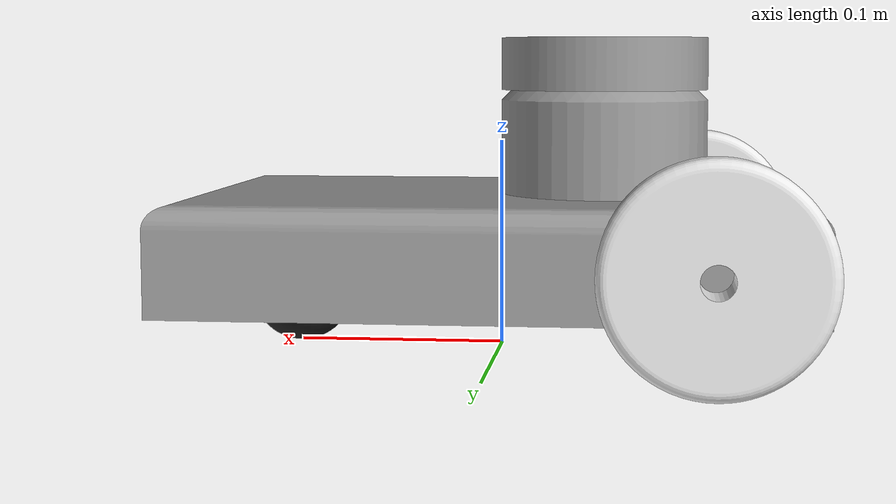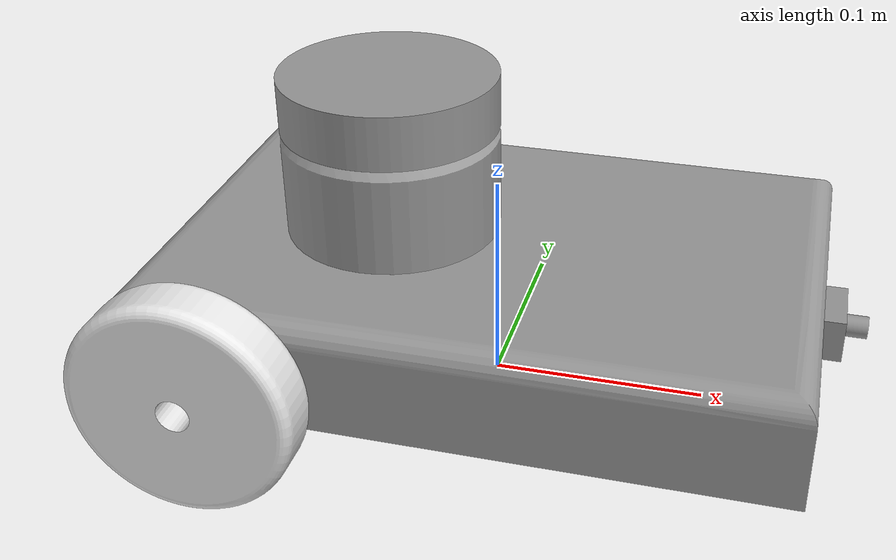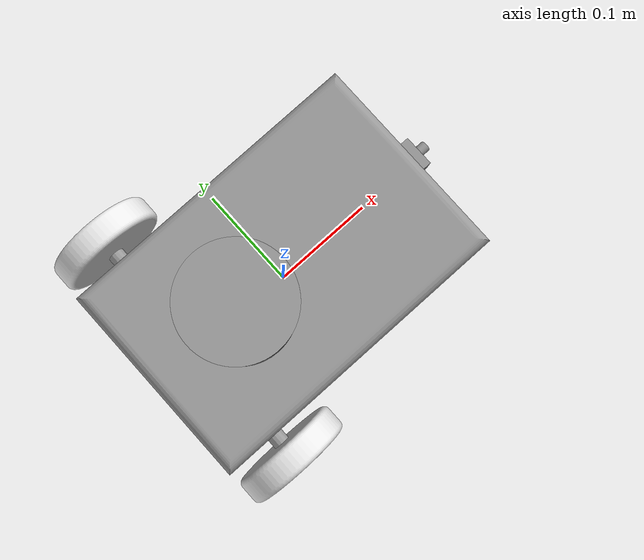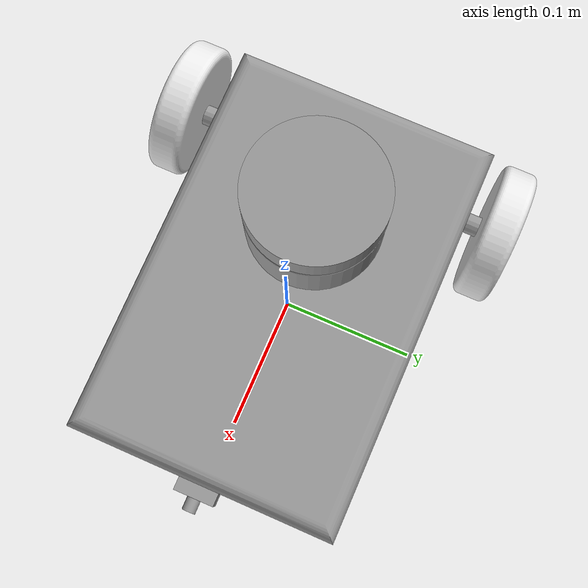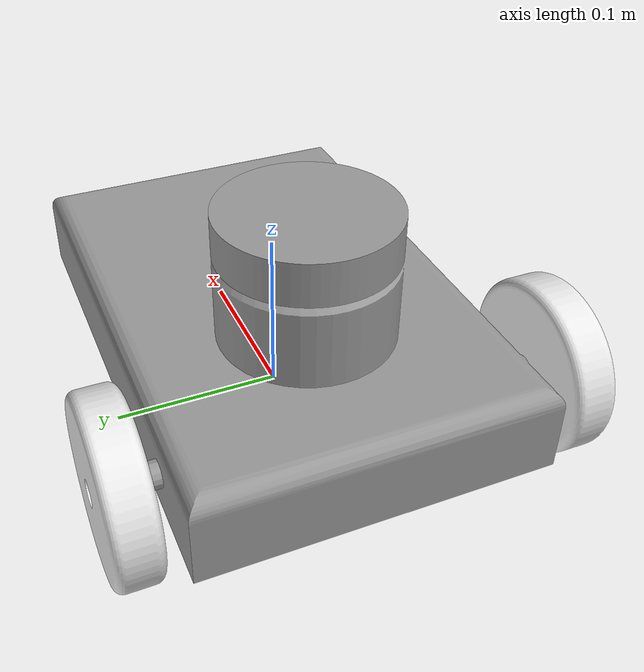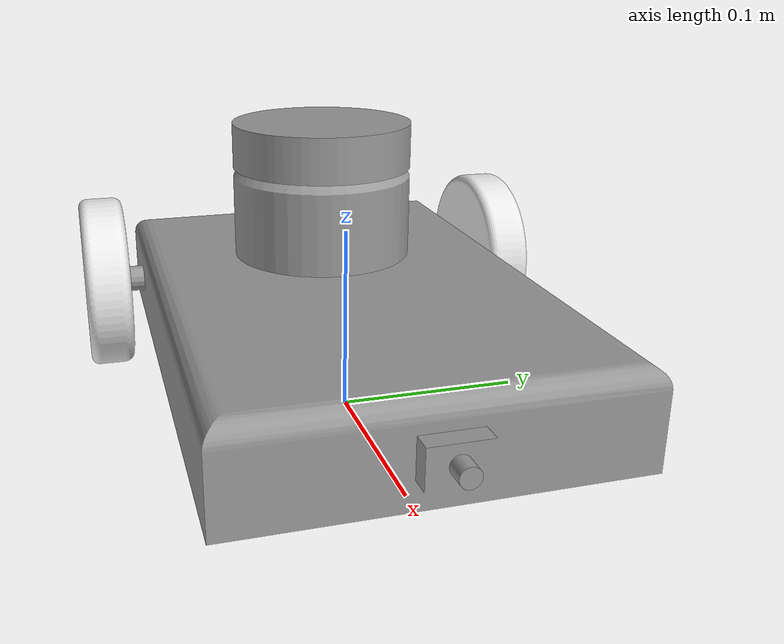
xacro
<?xml version="1.0" ?>
<robot name="maze_bot" xmlns:xacro="http://www.ros.org/wiki/xacro">

<xacro:include filename="$(find maze_bot)/urdf/maze_bot.trans" />
<xacro:include filename="$(find maze_bot)/urdf/maze_bot.gazebo" />
<link name="base_link">
  <inertial>
    <origin xyz="-0.0055867824164207045 4.3086649718411453e-17 0.055589318728555964" rpy="0 0 0"/>
    <mass value="3.580002214810765"/>
    <inertia ixx="0.012385" iyy="0.026567" izz="0.035663" ixy="0.0" iyz="0.0" ixz="0.000914"/>
  </inertial>
  <visual>
    <origin xyz="0 0 0" rpy="0 0 0"/>
    <geometry>
      <mesh filename="package://maze_bot/meshes/base_link.stl" scale="0.001 0.001 0.001"/>
    </geometry>
    <material name="gray"/>
  </visual>
  <collision>
    <origin xyz="0 0 0" rpy="0 0 0"/>
    <geometry>
      <mesh filename="package://maze_bot/meshes/base_link.stl" scale="0.001 0.001 0.001"/>
    </geometry>
  </collision>
</link>

<link name="right_wheel_1">
  <inertial>
    <origin xyz="-1.8346435481930712e-14 -0.012499999999999997 0.0" rpy="0 0 0"/>
    <mass value="0.17543149376634687"/>
    <inertia ixx="0.000119" iyy="0.000221" izz="0.000119" ixy="0.0" iyz="0.0" ixz="0.0"/>
  </inertial>
  <visual>
    <origin xyz="0.1 0.11 -0.05" rpy="0 0 0"/>
    <geometry>
      <mesh filename="package://maze_bot/meshes/right_wheel_1.stl" scale="0.001 0.001 0.001"/>
    </geometry>
    <material name="white"/>
  </visual>
  <collision>
    <origin xyz="0.1 0.11 -0.05" rpy="0 0 0"/>
    <geometry>
      <mesh filename="package://maze_bot/meshes/right_wheel_1.stl" scale="0.001 0.001 0.001"/>
    </geometry>
  </collision>
</link>

<link name="left_wheel_1">
  <inertial>
    <origin xyz="-1.8346435481930712e-14 0.012499999999999997 0.0" rpy="0 0 0"/>
    <mass value="0.17543149376634687"/>
    <inertia ixx="0.000119" iyy="0.000221" izz="0.000119" ixy="-0.0" iyz="0.0" ixz="0.0"/>
  </inertial>
  <visual>
    <origin xyz="0.1 -0.11 -0.05" rpy="0 0 0"/>
    <geometry>
      <mesh filename="package://maze_bot/meshes/left_wheel_1.stl" scale="0.001 0.001 0.001"/>
    </geometry>
    <material name="white"/>
  </visual>
  <collision>
    <origin xyz="0.1 -0.11 -0.05" rpy="0 0 0"/>
    <geometry>
      <mesh filename="package://maze_bot/meshes/left_wheel_1.stl" scale="0.001 0.001 0.001"/>
    </geometry>
  </collision>
</link>

<link name="caster_1">
  <inertial>
    <origin xyz="1.3877787807814457e-17 0.0 -0.009374999999999998" rpy="0 0 0"/>
    <mass value="0.25689064927791533"/>
    <inertia ixx="4.2e-05" iyy="4.2e-05" izz="6.4e-05" ixy="0.0" iyz="0.0" ixz="0.0"/>
  </inertial>
  <visual>
    <origin xyz="-0.1 0.0 -0.025" rpy="0 0 0"/>
    <geometry>
      <mesh filename="package://maze_bot/meshes/caster_1.stl" scale="0.001 0.001 0.001"/>
    </geometry>
    <material name="black"/>
  </visual>
  <collision>
    <origin xyz="-0.1 0.0 -0.025" rpy="0 0 0"/>
    <geometry>
      <mesh filename="package://maze_bot/meshes/caster_1.stl" scale="0.001 0.001 0.001"/>
    </geometry>
  </collision>
</link>

<link name="lidar_1">
  <inertial>
    <origin xyz="1.3877787807814457e-17 0.0 0.012499999999999983" rpy="0 0 0"/>
    <mass value="1.541343895667491"/>
    <inertia ixx="0.001044" iyy="0.001044" izz="0.001927" ixy="-0.0" iyz="-0.0" ixz="0.0"/>
  </inertial>
  <visual>
    <origin xyz="0.05 -0.0 -0.125" rpy="0 0 0"/>
    <geometry>
      <mesh filename="package://maze_bot/meshes/lidar_1.stl" scale="0.001 0.001 0.001"/>
    </geometry>
    <material name="gray"/>
  </visual>
  <collision>
    <origin xyz="0.05 -0.0 -0.125" rpy="0 0 0"/>
    <geometry>
      <mesh filename="package://maze_bot/meshes/lidar_1.stl" scale="0.001 0.001 0.001"/>
    </geometry>
  </collision>
</link>

<link name="camera_1">
  <inertial>
    <origin xyz="0.004999999999999949 5.228400754468975e-13 -1.3877787807814457e-17" rpy="0 0 0"/>
    <mass value="0.0010288715940507016"/>
    <inertia ixx="0.0" iyy="0.0" izz="0.0" ixy="0.0" iyz="0.0" ixz="-0.0"/>
  </inertial>
  <visual>
    <origin xyz="-0.16 -0.0 -0.05" rpy="0 0 0"/>
    <geometry>
      <mesh filename="package://maze_bot/meshes/camera_1.stl" scale="0.001 0.001 0.001"/>
    </geometry>
    <material name="gray"/>
  </visual>
  <collision>
    <origin xyz="-0.16 -0.0 -0.05" rpy="0 0 0"/>
    <geometry>
      <mesh filename="package://maze_bot/meshes/camera_1.stl" scale="0.001 0.001 0.001"/>
    </geometry>
  </collision>
</link>

<joint name="Revolute 1" type="continuous">
  <origin xyz="-0.1 -0.11 0.05" rpy="0 0 0"/>
  <parent link="base_link"/>
  <child link="right_wheel_1"/>
  <axis xyz="0.0 1.0 0.0"/>
</joint>

<joint name="Revolute 2" type="continuous">
  <origin xyz="-0.1 0.11 0.05" rpy="0 0 0"/>
  <parent link="base_link"/>
  <child link="left_wheel_1"/>
  <axis xyz="0.0 1.0 0.0"/>
</joint>

<joint name="Rigid 3" type="fixed">
  <origin xyz="0.1 0.0 0.025" rpy="0 0 0"/>
  <parent link="base_link"/>
  <child link="caster_1"/>
</joint>

<joint name="Rigid 4" type="fixed">
  <origin xyz="-0.05 0.0 0.125" rpy="0 0 0"/>
  <parent link="base_link"/>
  <child link="lidar_1"/>
</joint>

<joint name="Rigid 5" type="fixed">
  <origin xyz="0.16 0.0 0.05" rpy="0 0 0"/>
  <parent link="base_link"/>
  <child link="camera_1"/>
</joint>

<gazebo reference="base_link">
  <material>${body_color}</material>
  <mu1>0.2</mu1>
  <mu2>0.2</mu2>
  <selfCollide>true</selfCollide>
  <gravity>true</gravity>
</gazebo>

<gazebo reference="right_wheel_1">
  <material>${body_color}</material>
  <mu1>15000</mu1>
  <mu2>15000</mu2>
  <selfCollide>true</selfCollide>
</gazebo>

<gazebo reference="left_wheel_1">
  <material>${body_color}</material>
  <mu1>15000</mu1>
  <mu2>15000</mu2>
  <selfCollide>true</selfCollide>
</gazebo>

<gazebo reference="caster_1">
  <material>${body_color}</material>
  <mu1>0.01</mu1>
  <mu2>0.01</mu2>
  <selfCollide>true</selfCollide>
</gazebo>

<gazebo reference="lidar_1">
  <material>${body_color}</material>
  <mu1>0.2</mu1>
  <mu2>0.2</mu2>
  <selfCollide>true</selfCollide>
</gazebo>

<gazebo reference="camera_1">
  <material>${body_color}</material>
  <mu1>0.2</mu1>
  <mu2>0.2</mu2>
  <selfCollide>true</selfCollide>
</gazebo>

<gazebo>
  <plugin filename="libgazebo_ros_diff_drive.so" name="gazebo_base_controller">
    <odometry_frame>odom</odometry_frame>
    <commandTopic>cmd_vel</commandTopic>
    <publish_odom>true</publish_odom>
    <publish_odom_tf>true</publish_odom_tf>
    <update_rate>15.0</update_rate>
    <left_joint>Revolute 2</left_joint>
    <right_joint>Revolute 1</right_joint>
    <wheel_separation>0.12</wheel_separation>
    <wheel_diameter>0.1</wheel_diameter>
    <max_wheel_acceleration>1.0</max_wheel_acceleration>
    <robotBaseFrame>base_link</robotBaseFrame>

  </plugin>
</gazebo>

<gazebo reference="lidar_1">
    <sensor name="gazebo_lidar" type="ray">
      <visualize>false</visualize>
      <update_rate>12.0</update_rate>
      <plugin filename="libgazebo_ros_ray_sensor.so" name="gazebo_lidar">
      <ros>
        <remapping>~/out:=scan</remapping>
      </ros>

      <output_type>sensor_msgs/LaserScan</output_type>
      <frame_name>lidar_1</frame_name>
      </plugin>
      <ray>
        <scan>
          <horizontal>
            <samples>360</samples>
            <resolution>1</resolution>
            <min_angle>-3.14</min_angle>
            <max_angle>3.14</max_angle>
          </horizontal>
        </scan>
        <range>
          <min>0.120</min>
          <max>3.5</max>
          <resolution>0.015</resolution>
        </range>
        <noise>
          <type>gaussian</type>
          <mean>0.0</mean>
          <stddev>0.01</stddev>
        </noise>
      </ray>
    </sensor>
    <material>Gazebo/DarkGrey</material>
</gazebo>

<gazebo reference="camera_1">
  <sensor type="camera" name="camera1">
    <update_rate>30.0</update_rate>
    <camera name="head">
      <horizontal_fov>1.3962634</horizontal_fov>
      <image>
        <width>800</width>
        <height>800</height>
        <format>R8G8B8</format>
      </image>
      <clip>
        <near>0.02</near>
        <far>300</far>
      </clip>
      <noise>
        <type>gaussian</type>
        <mean>0.0</mean>
        <stddev>0.007</stddev>
      </noise>
    </camera>
    <plugin name="camera_controller" filename="libgazebo_ros_camera.so">
      <alwaysOn>true</alwaysOn>
      <updateRate>0.0</updateRate>
      <cameraName>/camera</cameraName>
      <imageTopicName>image_raw</imageTopicName>
      <cameraInfoTopicName>camera_info</cameraInfoTopicName>
      <frameName>camera_1</frameName>
      <hackBaseline>0.07</hackBaseline>
    </plugin>
  </sensor>
  <material>Gazebo/Blue</material>
</gazebo>

  <gazebo reference="base_link">
      <material>Gazebo/Black</material>
    </gazebo>
    <gazebo reference="caster_1">
      <material>Gazebo/White</material>
    </gazebo>

    <gazebo reference="right_wheel_1">
      <material>Gazebo/Orange</material>
    </gazebo>
    <gazebo reference="left_wheel_1">
      <material>Gazebo/Orange</material>
    </gazebo>

</robot>

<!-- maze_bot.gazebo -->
<robot name="maze_bot" xmlns:xacro="http://www.ros.org/wiki/xacro" >

<xacro:property name="body_color" value="Gazebo/Silver" />

<gazebo>
  <plugin name="control" filename="libgazebo_ros_control.so"/>
</gazebo>
<gazebo reference="base_link">
  <material>${body_color}</material>
  <mu1>0.2</mu1>
  <mu2>0.2</mu2>
  <selfCollide>true</selfCollide>
  <gravity>true</gravity>
</gazebo>

<gazebo reference="right_wheel_1">
  <material>${body_color}</material>
  <mu1>15000</mu1>
  <mu2>15000</mu2>
  <selfCollide>true</selfCollide>
</gazebo>

<gazebo reference="left_wheel_1">
  <material>${body_color}</material>
  <mu1>15000</mu1>
  <mu2>15000</mu2>
  <selfCollide>true</selfCollide>
</gazebo>

<gazebo reference="caster_1">
  <material>${body_color}</material>
  <mu1>0.01</mu1>
  <mu2>0.01</mu2>
  <selfCollide>true</selfCollide>
</gazebo>

<gazebo reference="lidar_1">
  <material>${body_color}</material>
  <mu1>0.2</mu1>
  <mu2>0.2</mu2>
  <selfCollide>true</selfCollide>
</gazebo>

<gazebo reference="camera_1">
  <material>${body_color}</material>
  <mu1>0.2</mu1>
  <mu2>0.2</mu2>
  <selfCollide>true</selfCollide>
</gazebo>

 <!-- hokuyo -->
<gazebo reference="lidar_1">
    <sensor name="gazebo_lidar" type="ray">
      <visualize>true</visualize>
      <update_rate>12.0</update_rate>
      <plugin filename="libgazebo_ros_ray_sensor.so" name="gazebo_lidar">
      <ros>
        <remapping>~/out:=scan</remapping>
      </ros>

      <output_type>sensor_msgs/LaserScan</output_type>
      <frame_name>lidar_1</frame_name>
      </plugin>
      <ray>
        <scan>
          <horizontal>
            <samples>360</samples>
            <resolution>1</resolution>
            <min_angle>0.00</min_angle>
            <max_angle>3.14</max_angle>
          </horizontal>
        </scan>
        <range>
          <min>0.120</min>
          <max>3.5</max>
          <resolution>0.015</resolution>
        </range>
        <noise>
          <type>gaussian</type>
          <mean>0.0</mean>
          <stddev>0.01</stddev>
        </noise>
      </ray>
    </sensor>
    <material>Gazebo/DarkGrey</material>
</gazebo>

<gazebo reference="camera_1">
  <sensor type="camera" name="camera1">
    <update_rate>30.0</update_rate>
    <camera name="head">
      <horizontal_fov>1.3962634</horizontal_fov>
      <image>
        <width>800</width>
        <height>800</height>
        <format>R8G8B8</format>
      </image>
      <clip>
        <near>0.02</near>
        <far>300</far>
      </clip>
      <noise>
        <type>gaussian</type>
        <mean>0.0</mean>
        <stddev>0.007</stddev>
      </noise>
    </camera>
    <plugin name="camera_controller" filename="libgazebo_ros_camera.so">
      <alwaysOn>true</alwaysOn>
      <updateRate>0.0</updateRate>
      <cameraName>/camera</cameraName>
      <imageTopicName>image_raw</imageTopicName>
      <cameraInfoTopicName>camera_info</cameraInfoTopicName>
      <frameName>camera_1</frameName>
      <hackBaseline>0.07</hackBaseline>
    </plugin>
  </sensor>
  <material>Gazebo/Blue</material>
</gazebo>
</robot>
